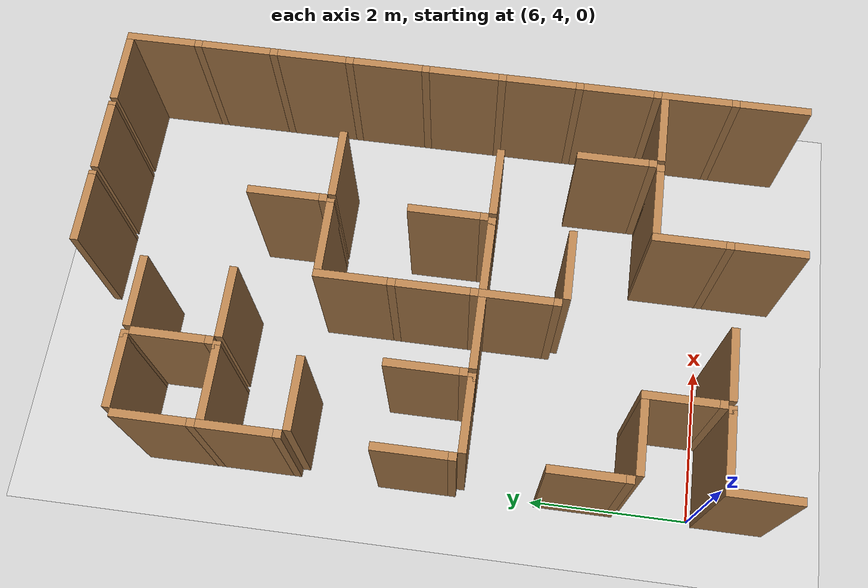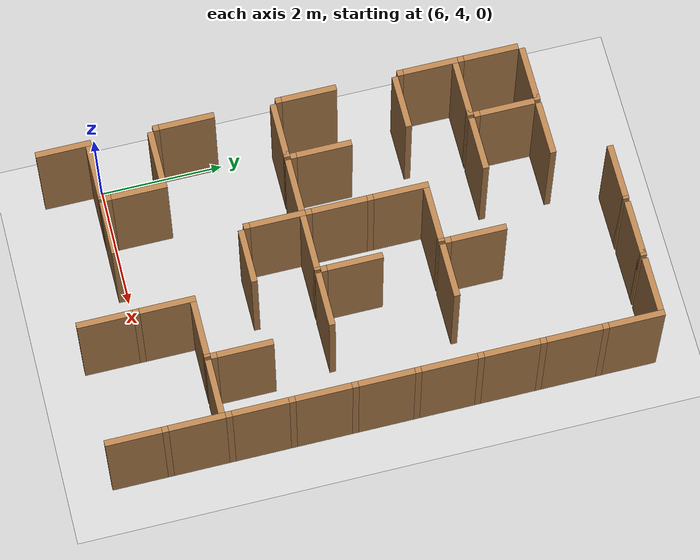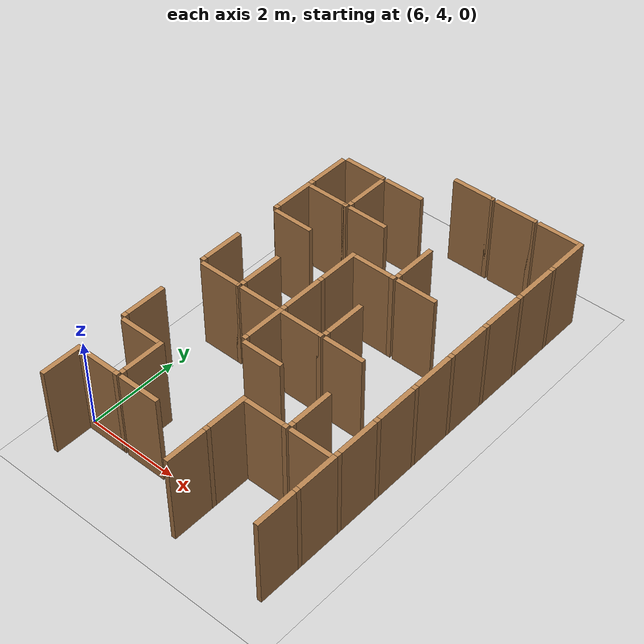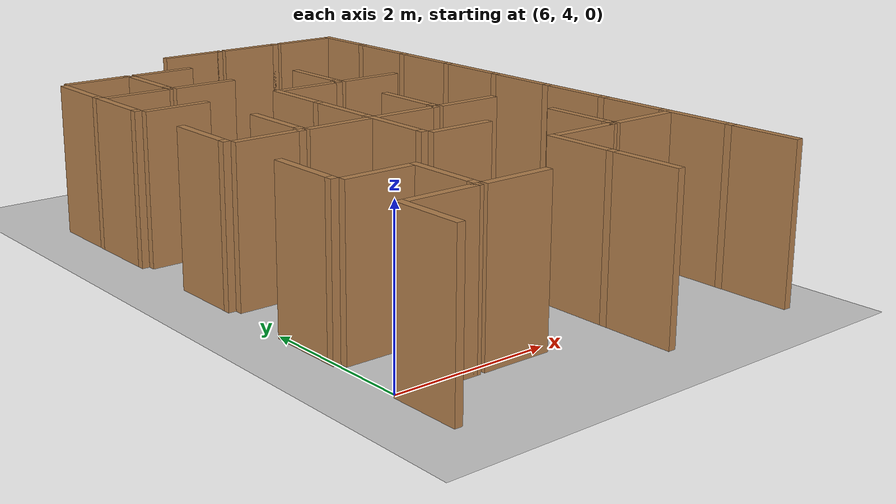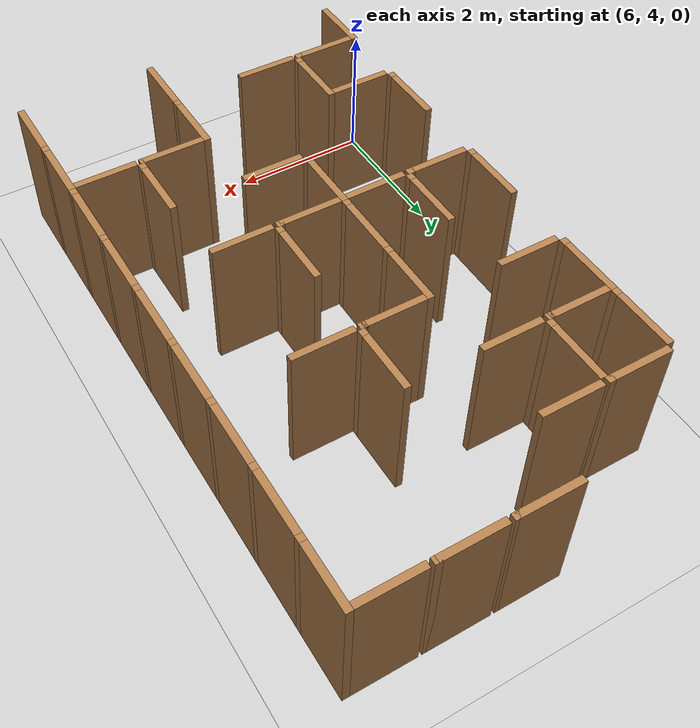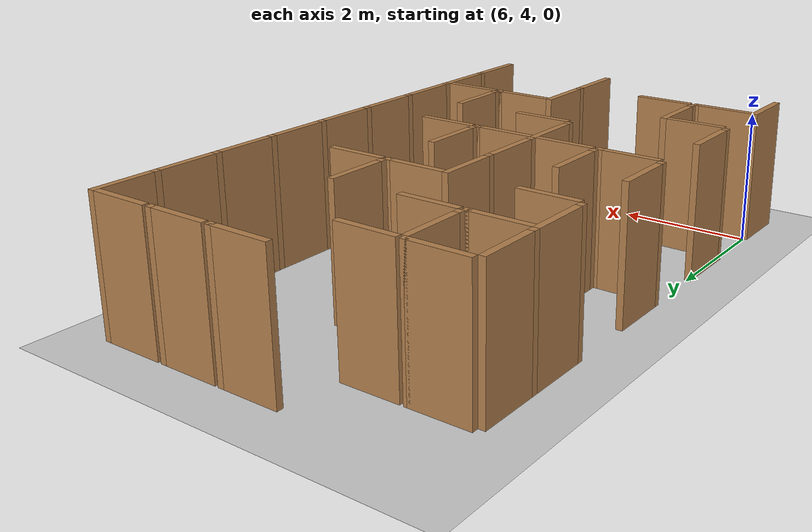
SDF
<sdf version="1.6">
 <world name="default">
  <include><uri>model://sun</uri></include>
  <model name="ground_plane">
   <static>true</static>
   <link name="link">
    <collision name="collision"><geometry><plane><size>12.0 12.0</size></plane></geometry></collision>
    <visual name="visual">
     <cast_shadows>false</cast_shadows>
     <geometry><plane><size>12.0 12.0</size></plane></geometry>
     <material>
      <script><uri>file://media/materials/scripts/gazebo.material</uri><name>Gazebo/Grey</name></script>
     </material>
    </visual>
   </link>
   <pose>6.0 6.0 0 0 0 0</pose>
  </model>
  <model name="vwall_3_6">
   <pose>6.0 3.5 1.0 0 0 0</pose>
   <link name="link">
    <collision name="collision"><geometry><box><size>0.1 0.9 2</size></box></geometry></collision>
    <visual name="visual">
     <geometry><box><size>0.1 0.9 2</size></box></geometry>
     <material>
      <script><uri>file://media/materials/scripts/gazebo.material</uri><name>Gazebo/Wood</name></script>
     </material>
    </visual>
   </link>
  </model>
  <model name="vwall_3_9">
   <pose>9.0 3.5 1.0 0 0 0</pose>
   <link name="link">
    <collision name="collision"><geometry><box><size>0.1 0.9 2</size></box></geometry></collision>
    <visual name="visual">
     <geometry><box><size>0.1 0.9 2</size></box></geometry>
     <material>
      <script><uri>file://media/materials/scripts/gazebo.material</uri><name>Gazebo/Wood</name></script>
     </material>
    </visual>
   </link>
  </model>
  <model name="vwall_3_11">
   <pose>11.0 3.5 1.0 0 0 0</pose>
   <link name="link">
    <collision name="collision"><geometry><box><size>0.1 0.9 2</size></box></geometry></collision>
    <visual name="visual">
     <geometry><box><size>0.1 0.9 2</size></box></geometry>
     <material>
      <script><uri>file://media/materials/scripts/gazebo.material</uri><name>Gazebo/Wood</name></script>
     </material>
    </visual>
   </link>
  </model>
  <model name="vwall_4_7">
   <pose>7.0 4.5 1.0 0 0 0</pose>
   <link name="link">
    <collision name="collision"><geometry><box><size>0.1 0.9 2</size></box></geometry></collision>
    <visual name="visual">
     <geometry><box><size>0.1 0.9 2</size></box></geometry>
     <material>
      <script><uri>file://media/materials/scripts/gazebo.material</uri><name>Gazebo/Wood</name></script>
     </material>
    </visual>
   </link>
  </model>
  <model name="joint_7.0_-4.0">
   <pose>7.0 4.0 1.0 0 0 0</pose>
   <link name="link">
    <collision name="collision"><geometry><box><size>0.1 0.1 2</size></box></geometry></collision>
    <visual name="visual">
     <geometry><box><size>0.1 0.1 2</size></box></geometry>
     <material>
      <script><uri>file://media/materials/scripts/gazebo.material</uri><name>Gazebo/Wood</name></script>
     </material>
    </visual>
   </link>
  </model>
  <model name="vwall_4_9">
   <pose>9.0 4.5 1.0 0 0 0</pose>
   <link name="link">
    <collision name="collision"><geometry><box><size>0.1 0.9 2</size></box></geometry></collision>
    <visual name="visual">
     <geometry><box><size>0.1 0.9 2</size></box></geometry>
     <material>
      <script><uri>file://media/materials/scripts/gazebo.material</uri><name>Gazebo/Wood</name></script>
     </material>
    </visual>
   </link>
  </model>
  <model name="joint_9.0_-4.0">
   <pose>9.0 4.0 1.0 0 0 0</pose>
   <link name="link">
    <collision name="collision"><geometry><box><size>0.1 0.1 2</size></box></geometry></collision>
    <visual name="visual">
     <geometry><box><size>0.1 0.1 2</size></box></geometry>
     <material>
      <script><uri>file://media/materials/scripts/gazebo.material</uri><name>Gazebo/Wood</name></script>
     </material>
    </visual>
   </link>
  </model>
  <model name="vwall_4_11">
   <pose>11.0 4.5 1.0 0 0 0</pose>
   <link name="link">
    <collision name="collision"><geometry><box><size>0.1 0.9 2</size></box></geometry></collision>
    <visual name="visual">
     <geometry><box><size>0.1 0.9 2</size></box></geometry>
     <material>
      <script><uri>file://media/materials/scripts/gazebo.material</uri><name>Gazebo/Wood</name></script>
     </material>
    </visual>
   </link>
  </model>
  <model name="joint_11.0_-4.0">
   <pose>11.0 4.0 1.0 0 0 0</pose>
   <link name="link">
    <collision name="collision"><geometry><box><size>0.1 0.1 2</size></box></geometry></collision>
    <visual name="visual">
     <geometry><box><size>0.1 0.1 2</size></box></geometry>
     <material>
      <script><uri>file://media/materials/scripts/gazebo.material</uri><name>Gazebo/Wood</name></script>
     </material>
    </visual>
   </link>
  </model>
  <model name="vwall_5_6">
   <pose>6.0 5.5 1.0 0 0 0</pose>
   <link name="link">
    <collision name="collision"><geometry><box><size>0.1 0.9 2</size></box></geometry></collision>
    <visual name="visual">
     <geometry><box><size>0.1 0.9 2</size></box></geometry>
     <material>
      <script><uri>file://media/materials/scripts/gazebo.material</uri><name>Gazebo/Wood</name></script>
     </material>
    </visual>
   </link>
  </model>
  <model name="joint_6.0_-5.0">
   <pose>6.0 5.0 1.0 0 0 0</pose>
   <link name="link">
    <collision name="collision"><geometry><box><size>0.1 0.1 2</size></box></geometry></collision>
    <visual name="visual">
     <geometry><box><size>0.1 0.1 2</size></box></geometry>
     <material>
      <script><uri>file://media/materials/scripts/gazebo.material</uri><name>Gazebo/Wood</name></script>
     </material>
    </visual>
   </link>
  </model>
  <model name="vwall_5_10">
   <pose>10.0 5.5 1.0 0 0 0</pose>
   <link name="link">
    <collision name="collision"><geometry><box><size>0.1 0.9 2</size></box></geometry></collision>
    <visual name="visual">
     <geometry><box><size>0.1 0.9 2</size></box></geometry>
     <material>
      <script><uri>file://media/materials/scripts/gazebo.material</uri><name>Gazebo/Wood</name></script>
     </material>
    </visual>
   </link>
  </model>
  <model name="joint_10.0_-5.0">
   <pose>10.0 5.0 1.0 0 0 0</pose>
   <link name="link">
    <collision name="collision"><geometry><box><size>0.1 0.1 2</size></box></geometry></collision>
    <visual name="visual">
     <geometry><box><size>0.1 0.1 2</size></box></geometry>
     <material>
      <script><uri>file://media/materials/scripts/gazebo.material</uri><name>Gazebo/Wood</name></script>
     </material>
    </visual>
   </link>
  </model>
  <model name="vwall_5_11">
   <pose>11.0 5.5 1.0 0 0 0</pose>
   <link name="link">
    <collision name="collision"><geometry><box><size>0.1 0.9 2</size></box></geometry></collision>
    <visual name="visual">
     <geometry><box><size>0.1 0.9 2</size></box></geometry>
     <material>
      <script><uri>file://media/materials/scripts/gazebo.material</uri><name>Gazebo/Wood</name></script>
     </material>
    </visual>
   </link>
  </model>
  <model name="joint_11.0_-5.0">
   <pose>11.0 5.0 1.0 0 0 0</pose>
   <link name="link">
    <collision name="collision"><geometry><box><size>0.1 0.1 2</size></box></geometry></collision>
    <visual name="visual">
     <geometry><box><size>0.1 0.1 2</size></box></geometry>
     <material>
      <script><uri>file://media/materials/scripts/gazebo.material</uri><name>Gazebo/Wood</name></script>
     </material>
    </visual>
   </link>
  </model>
  <model name="vwall_6_8">
   <pose>8.0 6.5 1.0 0 0 0</pose>
   <link name="link">
    <collision name="collision"><geometry><box><size>0.1 0.9 2</size></box></geometry></collision>
    <visual name="visual">
     <geometry><box><size>0.1 0.9 2</size></box></geometry>
     <material>
      <script><uri>file://media/materials/scripts/gazebo.material</uri><name>Gazebo/Wood</name></script>
     </material>
    </visual>
   </link>
  </model>
  <model name="joint_8.0_-6.0">
   <pose>8.0 6.0 1.0 0 0 0</pose>
   <link name="link">
    <collision name="collision"><geometry><box><size>0.1 0.1 2</size></box></geometry></collision>
    <visual name="visual">
     <geometry><box><size>0.1 0.1 2</size></box></geometry>
     <material>
      <script><uri>file://media/materials/scripts/gazebo.material</uri><name>Gazebo/Wood</name></script>
     </material>
    </visual>
   </link>
  </model>
  <model name="vwall_6_11">
   <pose>11.0 6.5 1.0 0 0 0</pose>
   <link name="link">
    <collision name="collision"><geometry><box><size>0.1 0.9 2</size></box></geometry></collision>
    <visual name="visual">
     <geometry><box><size>0.1 0.9 2</size></box></geometry>
     <material>
      <script><uri>file://media/materials/scripts/gazebo.material</uri><name>Gazebo/Wood</name></script>
     </material>
    </visual>
   </link>
  </model>
  <model name="joint_11.0_-6.0">
   <pose>11.0 6.0 1.0 0 0 0</pose>
   <link name="link">
    <collision name="collision"><geometry><box><size>0.1 0.1 2</size></box></geometry></collision>
    <visual name="visual">
     <geometry><box><size>0.1 0.1 2</size></box></geometry>
     <material>
      <script><uri>file://media/materials/scripts/gazebo.material</uri><name>Gazebo/Wood</name></script>
     </material>
    </visual>
   </link>
  </model>
  <model name="vwall_7_6">
   <pose>6.0 7.5 1.0 0 0 0</pose>
   <link name="link">
    <collision name="collision"><geometry><box><size>0.1 0.9 2</size></box></geometry></collision>
    <visual name="visual">
     <geometry><box><size>0.1 0.9 2</size></box></geometry>
     <material>
      <script><uri>file://media/materials/scripts/gazebo.material</uri><name>Gazebo/Wood</name></script>
     </material>
    </visual>
   </link>
  </model>
  <model name="joint_6.0_-7.0">
   <pose>6.0 7.0 1.0 0 0 0</pose>
   <link name="link">
    <collision name="collision"><geometry><box><size>0.1 0.1 2</size></box></geometry></collision>
    <visual name="visual">
     <geometry><box><size>0.1 0.1 2</size></box></geometry>
     <material>
      <script><uri>file://media/materials/scripts/gazebo.material</uri><name>Gazebo/Wood</name></script>
     </material>
    </visual>
   </link>
  </model>
  <model name="vwall_7_7">
   <pose>7.0 7.5 1.0 0 0 0</pose>
   <link name="link">
    <collision name="collision"><geometry><box><size>0.1 0.9 2</size></box></geometry></collision>
    <visual name="visual">
     <geometry><box><size>0.1 0.9 2</size></box></geometry>
     <material>
      <script><uri>file://media/materials/scripts/gazebo.material</uri><name>Gazebo/Wood</name></script>
     </material>
    </visual>
   </link>
  </model>
  <model name="joint_7.0_-7.0">
   <pose>7.0 7.0 1.0 0 0 0</pose>
   <link name="link">
    <collision name="collision"><geometry><box><size>0.1 0.1 2</size></box></geometry></collision>
    <visual name="visual">
     <geometry><box><size>0.1 0.1 2</size></box></geometry>
     <material>
      <script><uri>file://media/materials/scripts/gazebo.material</uri><name>Gazebo/Wood</name></script>
     </material>
    </visual>
   </link>
  </model>
  <model name="vwall_7_8">
   <pose>8.0 7.5 1.0 0 0 0</pose>
   <link name="link">
    <collision name="collision"><geometry><box><size>0.1 0.9 2</size></box></geometry></collision>
    <visual name="visual">
     <geometry><box><size>0.1 0.9 2</size></box></geometry>
     <material>
      <script><uri>file://media/materials/scripts/gazebo.material</uri><name>Gazebo/Wood</name></script>
     </material>
    </visual>
   </link>
  </model>
  <model name="joint_8.0_-7.0">
   <pose>8.0 7.0 1.0 0 0 0</pose>
   <link name="link">
    <collision name="collision"><geometry><box><size>0.1 0.1 2</size></box></geometry></collision>
    <visual name="visual">
     <geometry><box><size>0.1 0.1 2</size></box></geometry>
     <material>
      <script><uri>file://media/materials/scripts/gazebo.material</uri><name>Gazebo/Wood</name></script>
     </material>
    </visual>
   </link>
  </model>
  <model name="vwall_7_9">
   <pose>9.0 7.5 1.0 0 0 0</pose>
   <link name="link">
    <collision name="collision"><geometry><box><size>0.1 0.9 2</size></box></geometry></collision>
    <visual name="visual">
     <geometry><box><size>0.1 0.9 2</size></box></geometry>
     <material>
      <script><uri>file://media/materials/scripts/gazebo.material</uri><name>Gazebo/Wood</name></script>
     </material>
    </visual>
   </link>
  </model>
  <model name="joint_9.0_-7.0">
   <pose>9.0 7.0 1.0 0 0 0</pose>
   <link name="link">
    <collision name="collision"><geometry><box><size>0.1 0.1 2</size></box></geometry></collision>
    <visual name="visual">
     <geometry><box><size>0.1 0.1 2</size></box></geometry>
     <material>
      <script><uri>file://media/materials/scripts/gazebo.material</uri><name>Gazebo/Wood</name></script>
     </material>
    </visual>
   </link>
  </model>
  <model name="vwall_7_11">
   <pose>11.0 7.5 1.0 0 0 0</pose>
   <link name="link">
    <collision name="collision"><geometry><box><size>0.1 0.9 2</size></box></geometry></collision>
    <visual name="visual">
     <geometry><box><size>0.1 0.9 2</size></box></geometry>
     <material>
      <script><uri>file://media/materials/scripts/gazebo.material</uri><name>Gazebo/Wood</name></script>
     </material>
    </visual>
   </link>
  </model>
  <model name="joint_11.0_-7.0">
   <pose>11.0 7.0 1.0 0 0 0</pose>
   <link name="link">
    <collision name="collision"><geometry><box><size>0.1 0.1 2</size></box></geometry></collision>
    <visual name="visual">
     <geometry><box><size>0.1 0.1 2</size></box></geometry>
     <material>
      <script><uri>file://media/materials/scripts/gazebo.material</uri><name>Gazebo/Wood</name></script>
     </material>
    </visual>
   </link>
  </model>
  <model name="vwall_8_8">
   <pose>8.0 8.5 1.0 0 0 0</pose>
   <link name="link">
    <collision name="collision"><geometry><box><size>0.1 0.9 2</size></box></geometry></collision>
    <visual name="visual">
     <geometry><box><size>0.1 0.9 2</size></box></geometry>
     <material>
      <script><uri>file://media/materials/scripts/gazebo.material</uri><name>Gazebo/Wood</name></script>
     </material>
    </visual>
   </link>
  </model>
  <model name="joint_8.0_-8.0">
   <pose>8.0 8.0 1.0 0 0 0</pose>
   <link name="link">
    <collision name="collision"><geometry><box><size>0.1 0.1 2</size></box></geometry></collision>
    <visual name="visual">
     <geometry><box><size>0.1 0.1 2</size></box></geometry>
     <material>
      <script><uri>file://media/materials/scripts/gazebo.material</uri><name>Gazebo/Wood</name></script>
     </material>
    </visual>
   </link>
  </model>
  <model name="vwall_8_11">
   <pose>11.0 8.5 1.0 0 0 0</pose>
   <link name="link">
    <collision name="collision"><geometry><box><size>0.1 0.9 2</size></box></geometry></collision>
    <visual name="visual">
     <geometry><box><size>0.1 0.9 2</size></box></geometry>
     <material>
      <script><uri>file://media/materials/scripts/gazebo.material</uri><name>Gazebo/Wood</name></script>
     </material>
    </visual>
   </link>
  </model>
  <model name="joint_11.0_-8.0">
   <pose>11.0 8.0 1.0 0 0 0</pose>
   <link name="link">
    <collision name="collision"><geometry><box><size>0.1 0.1 2</size></box></geometry></collision>
    <visual name="visual">
     <geometry><box><size>0.1 0.1 2</size></box></geometry>
     <material>
      <script><uri>file://media/materials/scripts/gazebo.material</uri><name>Gazebo/Wood</name></script>
     </material>
    </visual>
   </link>
  </model>
  <model name="vwall_9_6">
   <pose>6.0 9.5 1.0 0 0 0</pose>
   <link name="link">
    <collision name="collision"><geometry><box><size>0.1 0.9 2</size></box></geometry></collision>
    <visual name="visual">
     <geometry><box><size>0.1 0.9 2</size></box></geometry>
     <material>
      <script><uri>file://media/materials/scripts/gazebo.material</uri><name>Gazebo/Wood</name></script>
     </material>
    </visual>
   </link>
  </model>
  <model name="joint_6.0_-9.0">
   <pose>6.0 9.0 1.0 0 0 0</pose>
   <link name="link">
    <collision name="collision"><geometry><box><size>0.1 0.1 2</size></box></geometry></collision>
    <visual name="visual">
     <geometry><box><size>0.1 0.1 2</size></box></geometry>
     <material>
      <script><uri>file://media/materials/scripts/gazebo.material</uri><name>Gazebo/Wood</name></script>
     </material>
    </visual>
   </link>
  </model>
  <model name="vwall_9_9">
   <pose>9.0 9.5 1.0 0 0 0</pose>
   <link name="link">
    <collision name="collision"><geometry><box><size>0.1 0.9 2</size></box></geometry></collision>
    <visual name="visual">
     <geometry><box><size>0.1 0.9 2</size></box></geometry>
     <material>
      <script><uri>file://media/materials/scripts/gazebo.material</uri><name>Gazebo/Wood</name></script>
     </material>
    </visual>
   </link>
  </model>
  <model name="joint_9.0_-9.0">
   <pose>9.0 9.0 1.0 0 0 0</pose>
   <link name="link">
    <collision name="collision"><geometry><box><size>0.1 0.1 2</size></box></geometry></collision>
    <visual name="visual">
     <geometry><box><size>0.1 0.1 2</size></box></geometry>
     <material>
      <script><uri>file://media/materials/scripts/gazebo.material</uri><name>Gazebo/Wood</name></script>
     </material>
    </visual>
   </link>
  </model>
  <model name="vwall_9_11">
   <pose>11.0 9.5 1.0 0 0 0</pose>
   <link name="link">
    <collision name="collision"><geometry><box><size>0.1 0.9 2</size></box></geometry></collision>
    <visual name="visual">
     <geometry><box><size>0.1 0.9 2</size></box></geometry>
     <material>
      <script><uri>file://media/materials/scripts/gazebo.material</uri><name>Gazebo/Wood</name></script>
     </material>
    </visual>
   </link>
  </model>
  <model name="joint_11.0_-9.0">
   <pose>11.0 9.0 1.0 0 0 0</pose>
   <link name="link">
    <collision name="collision"><geometry><box><size>0.1 0.1 2</size></box></geometry></collision>
    <visual name="visual">
     <geometry><box><size>0.1 0.1 2</size></box></geometry>
     <material>
      <script><uri>file://media/materials/scripts/gazebo.material</uri><name>Gazebo/Wood</name></script>
     </material>
    </visual>
   </link>
  </model>
  <model name="vwall_10_6">
   <pose>6.0 10.5 1.0 0 0 0</pose>
   <link name="link">
    <collision name="collision"><geometry><box><size>0.1 0.9 2</size></box></geometry></collision>
    <visual name="visual">
     <geometry><box><size>0.1 0.9 2</size></box></geometry>
     <material>
      <script><uri>file://media/materials/scripts/gazebo.material</uri><name>Gazebo/Wood</name></script>
     </material>
    </visual>
   </link>
  </model>
  <model name="joint_6.0_-10.0">
   <pose>6.0 10.0 1.0 0 0 0</pose>
   <link name="link">
    <collision name="collision"><geometry><box><size>0.1 0.1 2</size></box></geometry></collision>
    <visual name="visual">
     <geometry><box><size>0.1 0.1 2</size></box></geometry>
     <material>
      <script><uri>file://media/materials/scripts/gazebo.material</uri><name>Gazebo/Wood</name></script>
     </material>
    </visual>
   </link>
  </model>
  <model name="vwall_10_7">
   <pose>7.0 10.5 1.0 0 0 0</pose>
   <link name="link">
    <collision name="collision"><geometry><box><size>0.1 0.9 2</size></box></geometry></collision>
    <visual name="visual">
     <geometry><box><size>0.1 0.9 2</size></box></geometry>
     <material>
      <script><uri>file://media/materials/scripts/gazebo.material</uri><name>Gazebo/Wood</name></script>
     </material>
    </visual>
   </link>
  </model>
  <model name="joint_7.0_-10.0">
   <pose>7.0 10.0 1.0 0 0 0</pose>
   <link name="link">
    <collision name="collision"><geometry><box><size>0.1 0.1 2</size></box></geometry></collision>
    <visual name="visual">
     <geometry><box><size>0.1 0.1 2</size></box></geometry>
     <material>
      <script><uri>file://media/materials/scripts/gazebo.material</uri><name>Gazebo/Wood</name></script>
     </material>
    </visual>
   </link>
  </model>
  <model name="vwall_10_11">
   <pose>11.0 10.5 1.0 0 0 0</pose>
   <link name="link">
    <collision name="collision"><geometry><box><size>0.1 0.9 2</size></box></geometry></collision>
    <visual name="visual">
     <geometry><box><size>0.1 0.9 2</size></box></geometry>
     <material>
      <script><uri>file://media/materials/scripts/gazebo.material</uri><name>Gazebo/Wood</name></script>
     </material>
    </visual>
   </link>
  </model>
  <model name="joint_11.0_-10.0">
   <pose>11.0 10.0 1.0 0 0 0</pose>
   <link name="link">
    <collision name="collision"><geometry><box><size>0.1 0.1 2</size></box></geometry></collision>
    <visual name="visual">
     <geometry><box><size>0.1 0.1 2</size></box></geometry>
     <material>
      <script><uri>file://media/materials/scripts/gazebo.material</uri><name>Gazebo/Wood</name></script>
     </material>
    </visual>
   </link>
  </model>
  <model name="vwall_11_11">
   <pose>11.0 11.5 1.0 0 0 0</pose>
   <link name="link">
    <collision name="collision"><geometry><box><size>0.1 0.9 2</size></box></geometry></collision>
    <visual name="visual">
     <geometry><box><size>0.1 0.9 2</size></box></geometry>
     <material>
      <script><uri>file://media/materials/scripts/gazebo.material</uri><name>Gazebo/Wood</name></script>
     </material>
    </visual>
   </link>
  </model>
  <model name="joint_11.0_-11.0">
   <pose>11.0 11.0 1.0 0 0 0</pose>
   <link name="link">
    <collision name="collision"><geometry><box><size>0.1 0.1 2</size></box></geometry></collision>
    <visual name="visual">
     <geometry><box><size>0.1 0.1 2</size></box></geometry>
     <material>
      <script><uri>file://media/materials/scripts/gazebo.material</uri><name>Gazebo/Wood</name></script>
     </material>
    </visual>
   </link>
  </model>
  <model name="hwall_3_6">
   <pose>6.5 3.9 1.0 0 0 0</pose>
   <link name="link">
    <collision name="collision"><geometry><box><size>0.9 0.1 2</size></box></geometry></collision>
    <visual name="visual">
     <geometry><box><size>0.9 0.1 2</size></box></geometry>
     <material>
      <script><uri>file://media/materials/scripts/gazebo.material</uri><name>Gazebo/Wood</name></script>
     </material>
    </visual>
   </link>
  </model>
  <model name="joint_6.95_-3.9">
   <pose>6.95 3.9 1.0 0 0 0</pose>
   <link name="link">
    <collision name="collision"><geometry><box><size>0.1 0.1 2</size></box></geometry></collision>
    <visual name="visual">
     <geometry><box><size>0.1 0.1 2</size></box></geometry>
     <material>
      <script><uri>file://media/materials/scripts/gazebo.material</uri><name>Gazebo/Wood</name></script>
     </material>
    </visual>
   </link>
  </model>
  <model name="hwall_3_7">
   <pose>7.5 3.9 1.0 0 0 0</pose>
   <link name="link">
    <collision name="collision"><geometry><box><size>0.9 0.1 2</size></box></geometry></collision>
    <visual name="visual">
     <geometry><box><size>0.9 0.1 2</size></box></geometry>
     <material>
      <script><uri>file://media/materials/scripts/gazebo.material</uri><name>Gazebo/Wood</name></script>
     </material>
    </visual>
   </link>
  </model>
  <model name="hwall_4_6">
   <pose>6.5 4.9 1.0 0 0 0</pose>
   <link name="link">
    <collision name="collision"><geometry><box><size>0.9 0.1 2</size></box></geometry></collision>
    <visual name="visual">
     <geometry><box><size>0.9 0.1 2</size></box></geometry>
     <material>
      <script><uri>file://media/materials/scripts/gazebo.material</uri><name>Gazebo/Wood</name></script>
     </material>
    </visual>
   </link>
  </model>
  <model name="hwall_4_9">
   <pose>9.5 4.9 1.0 0 0 0</pose>
   <link name="link">
    <collision name="collision"><geometry><box><size>0.9 0.1 2</size></box></geometry></collision>
    <visual name="visual">
     <geometry><box><size>0.9 0.1 2</size></box></geometry>
     <material>
      <script><uri>file://media/materials/scripts/gazebo.material</uri><name>Gazebo/Wood</name></script>
     </material>
    </visual>
   </link>
  </model>
  <model name="joint_9.95_-4.9">
   <pose>9.95 4.9 1.0 0 0 0</pose>
   <link name="link">
    <collision name="collision"><geometry><box><size>0.1 0.1 2</size></box></geometry></collision>
    <visual name="visual">
     <geometry><box><size>0.1 0.1 2</size></box></geometry>
     <material>
      <script><uri>file://media/materials/scripts/gazebo.material</uri><name>Gazebo/Wood</name></script>
     </material>
    </visual>
   </link>
  </model>
  <model name="hwall_4_10">
   <pose>10.5 4.9 1.0 0 0 0</pose>
   <link name="link">
    <collision name="collision"><geometry><box><size>0.9 0.1 2</size></box></geometry></collision>
    <visual name="visual">
     <geometry><box><size>0.9 0.1 2</size></box></geometry>
     <material>
      <script><uri>file://media/materials/scripts/gazebo.material</uri><name>Gazebo/Wood</name></script>
     </material>
    </visual>
   </link>
  </model>
  <model name="hwall_5_8">
   <pose>8.5 5.9 1.0 0 0 0</pose>
   <link name="link">
    <collision name="collision"><geometry><box><size>0.9 0.1 2</size></box></geometry></collision>
    <visual name="visual">
     <geometry><box><size>0.9 0.1 2</size></box></geometry>
     <material>
      <script><uri>file://media/materials/scripts/gazebo.material</uri><name>Gazebo/Wood</name></script>
     </material>
    </visual>
   </link>
  </model>
  <model name="hwall_6_6">
   <pose>6.5 6.9 1.0 0 0 0</pose>
   <link name="link">
    <collision name="collision"><geometry><box><size>0.9 0.1 2</size></box></geometry></collision>
    <visual name="visual">
     <geometry><box><size>0.9 0.1 2</size></box></geometry>
     <material>
      <script><uri>file://media/materials/scripts/gazebo.material</uri><name>Gazebo/Wood</name></script>
     </material>
    </visual>
   </link>
  </model>
  <model name="joint_6.95_-6.9">
   <pose>6.95 6.9 1.0 0 0 0</pose>
   <link name="link">
    <collision name="collision"><geometry><box><size>0.1 0.1 2</size></box></geometry></collision>
    <visual name="visual">
     <geometry><box><size>0.1 0.1 2</size></box></geometry>
     <material>
      <script><uri>file://media/materials/scripts/gazebo.material</uri><name>Gazebo/Wood</name></script>
     </material>
    </visual>
   </link>
  </model>
  <model name="hwall_6_7">
   <pose>7.5 6.9 1.0 0 0 0</pose>
   <link name="link">
    <collision name="collision"><geometry><box><size>0.9 0.1 2</size></box></geometry></collision>
    <visual name="visual">
     <geometry><box><size>0.9 0.1 2</size></box></geometry>
     <material>
      <script><uri>file://media/materials/scripts/gazebo.material</uri><name>Gazebo/Wood</name></script>
     </material>
    </visual>
   </link>
  </model>
  <model name="hwall_6_8">
   <pose>8.5 6.9 1.0 0 0 0</pose>
   <link name="link">
    <collision name="collision"><geometry><box><size>0.9 0.1 2</size></box></geometry></collision>
    <visual name="visual">
     <geometry><box><size>0.9 0.1 2</size></box></geometry>
     <material>
      <script><uri>file://media/materials/scripts/gazebo.material</uri><name>Gazebo/Wood</name></script>
     </material>
    </visual>
   </link>
  </model>
  <model name="joint_8.95_-6.9">
   <pose>8.95 6.9 1.0 0 0 0</pose>
   <link name="link">
    <collision name="collision"><geometry><box><size>0.1 0.1 2</size></box></geometry></collision>
    <visual name="visual">
     <geometry><box><size>0.1 0.1 2</size></box></geometry>
     <material>
      <script><uri>file://media/materials/scripts/gazebo.material</uri><name>Gazebo/Wood</name></script>
     </material>
    </visual>
   </link>
  </model>
  <model name="hwall_6_9">
   <pose>9.5 6.9 1.0 0 0 0</pose>
   <link name="link">
    <collision name="collision"><geometry><box><size>0.9 0.1 2</size></box></geometry></collision>
    <visual name="visual">
     <geometry><box><size>0.9 0.1 2</size></box></geometry>
     <material>
      <script><uri>file://media/materials/scripts/gazebo.material</uri><name>Gazebo/Wood</name></script>
     </material>
    </visual>
   </link>
  </model>
  <model name="hwall_8_6">
   <pose>6.5 8.9 1.0 0 0 0</pose>
   <link name="link">
    <collision name="collision"><geometry><box><size>0.9 0.1 2</size></box></geometry></collision>
    <visual name="visual">
     <geometry><box><size>0.9 0.1 2</size></box></geometry>
     <material>
      <script><uri>file://media/materials/scripts/gazebo.material</uri><name>Gazebo/Wood</name></script>
     </material>
    </visual>
   </link>
  </model>
  <model name="hwall_8_8">
   <pose>8.5 8.9 1.0 0 0 0</pose>
   <link name="link">
    <collision name="collision"><geometry><box><size>0.9 0.1 2</size></box></geometry></collision>
    <visual name="visual">
     <geometry><box><size>0.9 0.1 2</size></box></geometry>
     <material>
      <script><uri>file://media/materials/scripts/gazebo.material</uri><name>Gazebo/Wood</name></script>
     </material>
    </visual>
   </link>
  </model>
  <model name="joint_8.95_-8.9">
   <pose>8.95 8.9 1.0 0 0 0</pose>
   <link name="link">
    <collision name="collision"><geometry><box><size>0.1 0.1 2</size></box></geometry></collision>
    <visual name="visual">
     <geometry><box><size>0.1 0.1 2</size></box></geometry>
     <material>
      <script><uri>file://media/materials/scripts/gazebo.material</uri><name>Gazebo/Wood</name></script>
     </material>
    </visual>
   </link>
  </model>
  <model name="hwall_8_9">
   <pose>9.5 8.9 1.0 0 0 0</pose>
   <link name="link">
    <collision name="collision"><geometry><box><size>0.9 0.1 2</size></box></geometry></collision>
    <visual name="visual">
     <geometry><box><size>0.9 0.1 2</size></box></geometry>
     <material>
      <script><uri>file://media/materials/scripts/gazebo.material</uri><name>Gazebo/Wood</name></script>
     </material>
    </visual>
   </link>
  </model>
  <model name="hwall_9_6">
   <pose>6.5 9.9 1.0 0 0 0</pose>
   <link name="link">
    <collision name="collision"><geometry><box><size>0.9 0.1 2</size></box></geometry></collision>
    <visual name="visual">
     <geometry><box><size>0.9 0.1 2</size></box></geometry>
     <material>
      <script><uri>file://media/materials/scripts/gazebo.material</uri><name>Gazebo/Wood</name></script>
     </material>
    </visual>
   </link>
  </model>
  <model name="joint_6.95_-9.9">
   <pose>6.95 9.9 1.0 0 0 0</pose>
   <link name="link">
    <collision name="collision"><geometry><box><size>0.1 0.1 2</size></box></geometry></collision>
    <visual name="visual">
     <geometry><box><size>0.1 0.1 2</size></box></geometry>
     <material>
      <script><uri>file://media/materials/scripts/gazebo.material</uri><name>Gazebo/Wood</name></script>
     </material>
    </visual>
   </link>
  </model>
  <model name="hwall_9_7">
   <pose>7.5 9.9 1.0 0 0 0</pose>
   <link name="link">
    <collision name="collision"><geometry><box><size>0.9 0.1 2</size></box></geometry></collision>
    <visual name="visual">
     <geometry><box><size>0.9 0.1 2</size></box></geometry>
     <material>
      <script><uri>file://media/materials/scripts/gazebo.material</uri><name>Gazebo/Wood</name></script>
     </material>
    </visual>
   </link>
  </model>
  <model name="hwall_11_6">
   <pose>6.5 11.0 1.0 0 0 0</pose>
   <link name="link">
    <collision name="collision"><geometry><box><size>0.9 0.1 2</size></box></geometry></collision>
    <visual name="visual">
     <geometry><box><size>0.9 0.1 2</size></box></geometry>
     <material>
      <script><uri>file://media/materials/scripts/gazebo.material</uri><name>Gazebo/Wood</name></script>
     </material>
    </visual>
   </link>
  </model>
  <model name="joint_6.95_-11.0">
   <pose>6.95 11.0 1.0 0 0 0</pose>
   <link name="link">
    <collision name="collision"><geometry><box><size>0.1 0.1 2</size></box></geometry></collision>
    <visual name="visual">
     <geometry><box><size>0.1 0.1 2</size></box></geometry>
     <material>
      <script><uri>file://media/materials/scripts/gazebo.material</uri><name>Gazebo/Wood</name></script>
     </material>
    </visual>
   </link>
  </model>
  <model name="hwall_11_7">
   <pose>7.5 11.0 1.0 0 0 0</pose>
   <link name="link">
    <collision name="collision"><geometry><box><size>0.9 0.1 2</size></box></geometry></collision>
    <visual name="visual">
     <geometry><box><size>0.9 0.1 2</size></box></geometry>
     <material>
      <script><uri>file://media/materials/scripts/gazebo.material</uri><name>Gazebo/Wood</name></script>
     </material>
    </visual>
   </link>
  </model>
  <model name="hwall_11_8">
   <pose>8.5 11.9 1.0 0 0 0</pose>
   <link name="link">
    <collision name="collision"><geometry><box><size>0.9 0.1 2</size></box></geometry></collision>
    <visual name="visual">
     <geometry><box><size>0.9 0.1 2</size></box></geometry>
     <material>
      <script><uri>file://media/materials/scripts/gazebo.material</uri><name>Gazebo/Wood</name></script>
     </material>
    </visual>
   </link>
  </model>
  <model name="joint_8.95_-11.9">
   <pose>8.95 11.9 1.0 0 0 0</pose>
   <link name="link">
    <collision name="collision"><geometry><box><size>0.1 0.1 2</size></box></geometry></collision>
    <visual name="visual">
     <geometry><box><size>0.1 0.1 2</size></box></geometry>
     <material>
      <script><uri>file://media/materials/scripts/gazebo.material</uri><name>Gazebo/Wood</name></script>
     </material>
    </visual>
   </link>
  </model>
  <model name="hwall_11_9">
   <pose>9.5 11.9 1.0 0 0 0</pose>
   <link name="link">
    <collision name="collision"><geometry><box><size>0.9 0.1 2</size></box></geometry></collision>
    <visual name="visual">
     <geometry><box><size>0.9 0.1 2</size></box></geometry>
     <material>
      <script><uri>file://media/materials/scripts/gazebo.material</uri><name>Gazebo/Wood</name></script>
     </material>
    </visual>
   </link>
  </model>
  <model name="joint_9.95_-11.9">
   <pose>9.95 11.9 1.0 0 0 0</pose>
   <link name="link">
    <collision name="collision"><geometry><box><size>0.1 0.1 2</size></box></geometry></collision>
    <visual name="visual">
     <geometry><box><size>0.1 0.1 2</size></box></geometry>
     <material>
      <script><uri>file://media/materials/scripts/gazebo.material</uri><name>Gazebo/Wood</name></script>
     </material>
    </visual>
   </link>
  </model>
  <model name="hwall_11_10">
   <pose>10.5 11.9 1.0 0 0 0</pose>
   <link name="link">
    <collision name="collision"><geometry><box><size>0.9 0.1 2</size></box></geometry></collision>
    <visual name="visual">
     <geometry><box><size>0.9 0.1 2</size></box></geometry>
     <material>
      <script><uri>file://media/materials/scripts/gazebo.material</uri><name>Gazebo/Wood</name></script>
     </material>
    </visual>
   </link>
  </model>
 </world>
</sdf>
